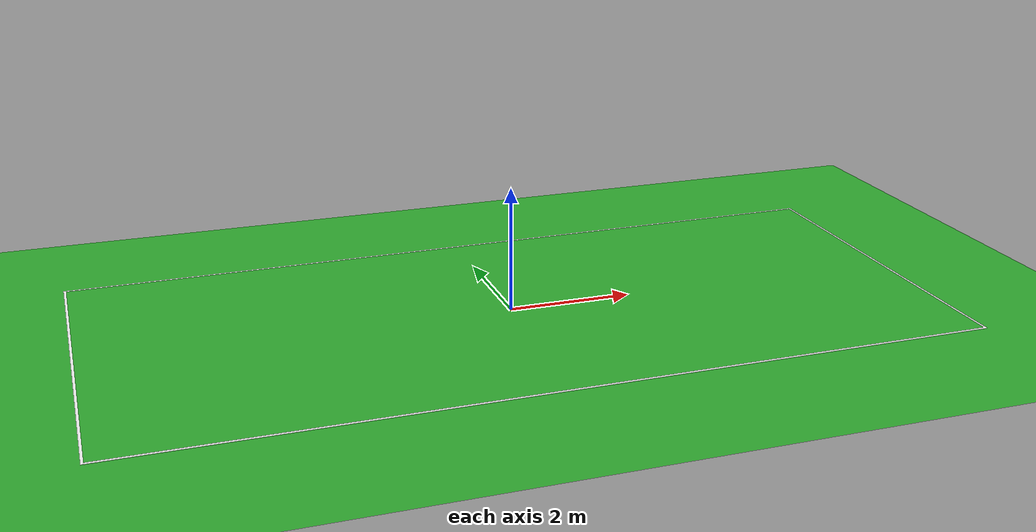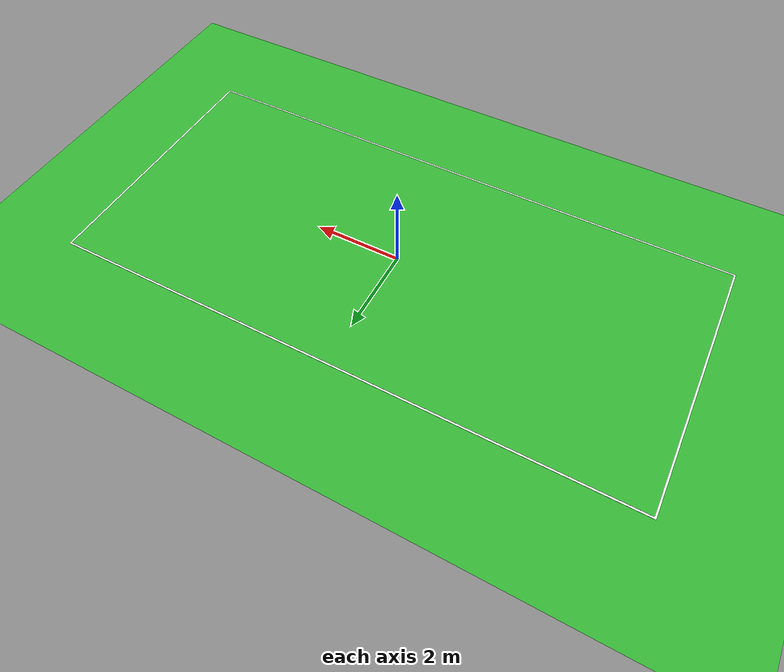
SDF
<?xml version="1.0" ?>
<sdf version="1.8">
  <world name="badminton_world">

    <!-- ── Physics ─────────────────────────────────────────────────────── -->
    <physics name="1ms" type="ignored">
      <max_step_size>0.001</max_step_size>
      <real_time_factor>1.0</real_time_factor>
    </physics>

    <!-- ── Core Ignition Plugins ────────────────────────────────────────── -->
    <plugin filename="ignition-gazebo-physics-system"
            name="ignition::gazebo::systems::Physics"/>
    <plugin filename="ignition-gazebo-scene-broadcaster-system"
            name="ignition::gazebo::systems::SceneBroadcaster"/>
    <plugin filename="ignition-gazebo-user-commands-system"
            name="ignition::gazebo::systems::UserCommands"/>
    <plugin filename="ignition-gazebo-sensors-system"
            name="ignition::gazebo::systems::Sensors">
      <render_engine>ogre</render_engine>
    </plugin>

    <!-- ── Sunlight ─────────────────────────────────────────────────────── -->
    <light type="directional" name="sun">
      <cast_shadows>true</cast_shadows>
      <pose>0 0 10 0 0 0</pose>
      <diffuse>0.9 0.9 0.85 1</diffuse>
      <specular>0.3 0.3 0.3 1</specular>
      <direction>-0.5 0.1 -0.9</direction>
    </light>

    <!-- ── Ground Plane (Grass) ────────────────────────────────────────── -->
    <model name="ground_plane">
      <static>true</static>
      <link name="link">
        <collision name="collision">
          <geometry>
            <plane>
              <normal>0 0 1</normal>
              <size>50 50</size>
            </plane>
          </geometry>
          <surface>
            <friction>
              <ode>
                <mu>0.6</mu>
                <mu2>0.6</mu2>
              </ode>
            </friction>
          </surface>
        </collision>
        <visual name="visual">
          <geometry>
            <plane>
              <normal>0 0 1</normal>
              <size>50 50</size>
            </plane>
          </geometry>
          <material>
            <ambient>0.2 0.5 0.2 1</ambient>
            <diffuse>0.2 0.7 0.2 1</diffuse>
            <specular>0.1 0.1 0.1 1</specular>
          </material>
        </visual>
      </link>
    </model>

    <!-- ── Badminton Court Markings ───────────────────────────────────── -->
    <!-- Dimensions: 13.4m x 6.1m -->
    <model name="badminton_court">
      <static>true</static>
      <pose>0 0 0.005 0 0 0</pose>
      <link name="link">
        <visual name="outer_boundary">
          <geometry>
            <plane>
              <normal>0 0 1</normal>
              <size>13.4 6.1</size>
            </plane>
          </geometry>
          <material>
            <ambient>1 1 1 1</ambient>
            <diffuse>1 1 1 1</diffuse>
            <specular>0 0 0 1</specular>
          </material>
        </visual>
        <!-- Inner green area to show lines -->
        <visual name="inner_area">
          <pose>0 0 0.001 0 0 0</pose>
          <geometry>
            <plane>
              <normal>0 0 1</normal>
              <size>13.32 6.02</size>
            </plane>
          </geometry>
          <material>
            <ambient>0.2 0.5 0.2 1</ambient>
            <diffuse>0.2 0.7 0.2 1</diffuse>
          </material>
        </visual>
        <!-- Center line -->
        <visual name="center_line">
          <pose>0 0 0.002 0 0 0</pose>
          <geometry>
            <box>
              <size>0.04 6.1 0.001</size>
            </box>
          </geometry>
          <material>
            <ambient>1 1 1 1</ambient>
          </material>
        </visual>
      </link>
    </model>

  </world>
</sdf>
